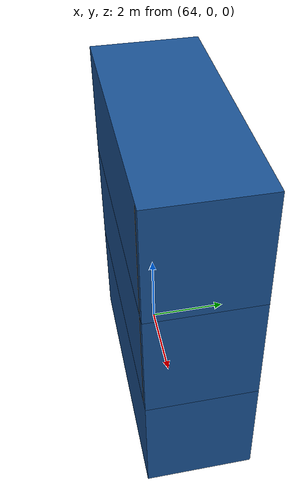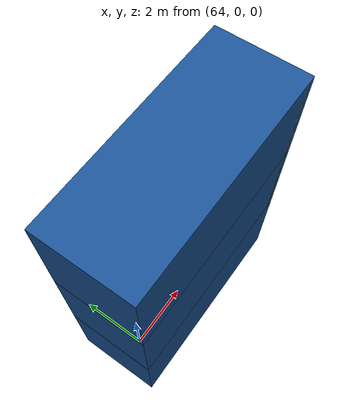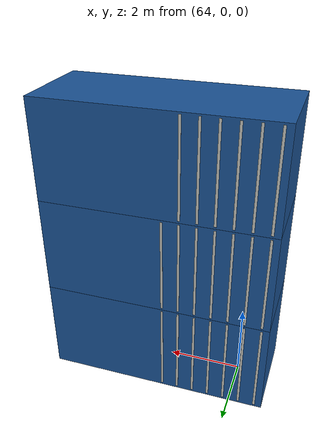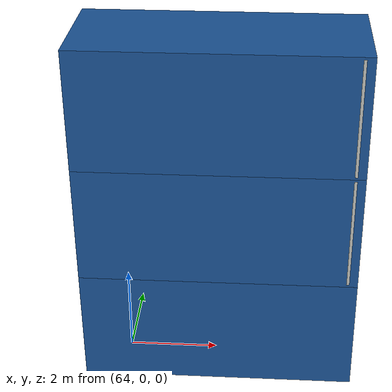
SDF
<sdf version="1.9">
 <world name="iris_mppi_yard_runup60">
  <model name="container_1_0">
   <static>true</static>
   <pose>66.1 0.10000000000000009 1.3 0.0 0.0 0.0</pose>
   <link name="body">
    <collision name="collision"><geometry><box><size>6 2.44 2.6</size></box></geometry></collision>
    <visual name="visual">
     <geometry><box><size>6 2.44 2.6</size></box></geometry>
     <material><ambient>.10 .32 .58 1</ambient><diffuse>.10 .32 .58 1</diffuse></material>
    </visual>
   </link>
  </model>
  <model name="rib_1_0_0_1">
   <static>true</static>
   <pose>63.3 1.318 1.3 0.0 0.0 0.0</pose>
   <link name="body">
    <visual name="visual">
     <geometry><box><size>0.06 0.008 2.5</size></box></geometry>
     <material><ambient>.75 .75 .72 1</ambient><diffuse>.75 .75 .72 1</diffuse></material>
    </visual>
   </link>
  </model>
  <model name="rib_1_0_1_1">
   <static>true</static>
   <pose>63.730000000000004 1.318 1.3 0.0 0.0 0.0</pose>
   <link name="body">
    <visual name="visual">
     <geometry><box><size>0.06 0.008 2.5</size></box></geometry>
     <material><ambient>.75 .75 .72 1</ambient><diffuse>.75 .75 .72 1</diffuse></material>
    </visual>
   </link>
  </model>
  <model name="rib_1_0_2_1">
   <static>true</static>
   <pose>64.16 1.318 1.3 0.0 0.0 0.0</pose>
   <link name="body">
    <visual name="visual">
     <geometry><box><size>0.06 0.008 2.5</size></box></geometry>
     <material><ambient>.75 .75 .72 1</ambient><diffuse>.75 .75 .72 1</diffuse></material>
    </visual>
   </link>
  </model>
  <model name="rib_1_0_3_1">
   <static>true</static>
   <pose>64.59 1.318 1.3 0.0 0.0 0.0</pose>
   <link name="body">
    <visual name="visual">
     <geometry><box><size>0.06 0.008 2.5</size></box></geometry>
     <material><ambient>.75 .75 .72 1</ambient><diffuse>.75 .75 .72 1</diffuse></material>
    </visual>
   </link>
  </model>
  <model name="rib_1_0_4_1">
   <static>true</static>
   <pose>65.02 1.318 1.3 0.0 0.0 0.0</pose>
   <link name="body">
    <visual name="visual">
     <geometry><box><size>0.06 0.008 2.5</size></box></geometry>
     <material><ambient>.75 .75 .72 1</ambient><diffuse>.75 .75 .72 1</diffuse></material>
    </visual>
   </link>
  </model>
  <model name="rib_1_0_5_1">
   <static>true</static>
   <pose>65.45 1.318 1.3 0.0 0.0 0.0</pose>
   <link name="body">
    <visual name="visual">
     <geometry><box><size>0.06 0.008 2.5</size></box></geometry>
     <material><ambient>.75 .75 .72 1</ambient><diffuse>.75 .75 .72 1</diffuse></material>
    </visual>
   </link>
  </model>
  <model name="rib_1_0_6_1">
   <static>true</static>
   <pose>65.88 1.318 1.3 0.0 0.0 0.0</pose>
   <link name="body">
    <visual name="visual">
     <geometry><box><size>0.06 0.008 2.5</size></box></geometry>
     <material><ambient>.75 .75 .72 1</ambient><diffuse>.75 .75 .72 1</diffuse></material>
    </visual>
   </link>
  </model>
  <model name="container_1_1">
   <static>true</static>
   <pose>66.1 0.10000000000000009 3.9000000000000004 0.0 0.0 0.0</pose>
   <link name="body">
    <collision name="collision"><geometry><box><size>6 2.44 2.6</size></box></geometry></collision>
    <visual name="visual">
     <geometry><box><size>6 2.44 2.6</size></box></geometry>
     <material><ambient>.10 .32 .58 1</ambient><diffuse>.10 .32 .58 1</diffuse></material>
    </visual>
   </link>
  </model>
  <model name="rib_1_1_0_1">
   <static>true</static>
   <pose>63.3 1.318 3.9000000000000004 0.0 0.0 0.0</pose>
   <link name="body">
    <visual name="visual">
     <geometry><box><size>0.06 0.008 2.5</size></box></geometry>
     <material><ambient>.75 .75 .72 1</ambient><diffuse>.75 .75 .72 1</diffuse></material>
    </visual>
   </link>
  </model>
  <model name="rib_1_1_1_1">
   <static>true</static>
   <pose>63.730000000000004 1.318 3.9000000000000004 0.0 0.0 0.0</pose>
   <link name="body">
    <visual name="visual">
     <geometry><box><size>0.06 0.008 2.5</size></box></geometry>
     <material><ambient>.75 .75 .72 1</ambient><diffuse>.75 .75 .72 1</diffuse></material>
    </visual>
   </link>
  </model>
  <model name="rib_1_1_2_1">
   <static>true</static>
   <pose>64.16 1.318 3.9000000000000004 0.0 0.0 0.0</pose>
   <link name="body">
    <visual name="visual">
     <geometry><box><size>0.06 0.008 2.5</size></box></geometry>
     <material><ambient>.75 .75 .72 1</ambient><diffuse>.75 .75 .72 1</diffuse></material>
    </visual>
   </link>
  </model>
  <model name="rib_1_1_3_1">
   <static>true</static>
   <pose>64.59 1.318 3.9000000000000004 0.0 0.0 0.0</pose>
   <link name="body">
    <visual name="visual">
     <geometry><box><size>0.06 0.008 2.5</size></box></geometry>
     <material><ambient>.75 .75 .72 1</ambient><diffuse>.75 .75 .72 1</diffuse></material>
    </visual>
   </link>
  </model>
  <model name="rib_1_1_4_1">
   <static>true</static>
   <pose>65.02 1.318 3.9000000000000004 0.0 0.0 0.0</pose>
   <link name="body">
    <visual name="visual">
     <geometry><box><size>0.06 0.008 2.5</size></box></geometry>
     <material><ambient>.75 .75 .72 1</ambient><diffuse>.75 .75 .72 1</diffuse></material>
    </visual>
   </link>
  </model>
  <model name="rib_1_1_5_1">
   <static>true</static>
   <pose>65.45 1.318 3.9000000000000004 0.0 0.0 0.0</pose>
   <link name="body">
    <visual name="visual">
     <geometry><box><size>0.06 0.008 2.5</size></box></geometry>
     <material><ambient>.75 .75 .72 1</ambient><diffuse>.75 .75 .72 1</diffuse></material>
    </visual>
   </link>
  </model>
  <model name="rib_1_1_6_1">
   <static>true</static>
   <pose>65.88 1.318 3.9000000000000004 0.0 0.0 0.0</pose>
   <link name="body">
    <visual name="visual">
     <geometry><box><size>0.06 0.008 2.5</size></box></geometry>
     <material><ambient>.75 .75 .72 1</ambient><diffuse>.75 .75 .72 1</diffuse></material>
    </visual>
   </link>
  </model>
  <model name="rib_1_1_13_-1">
   <static>true</static>
   <pose>68.89 -1.1179999999999999 3.9000000000000004 0.0 0.0 0.0</pose>
   <link name="body">
    <visual name="visual">
     <geometry><box><size>0.06 0.008 2.5</size></box></geometry>
     <material><ambient>.75 .75 .72 1</ambient><diffuse>.75 .75 .72 1</diffuse></material>
    </visual>
   </link>
  </model>
  <model name="container_1_2">
   <static>true</static>
   <pose>66.1 0.10000000000000009 6.5 0.0 0.0 0.0</pose>
   <link name="body">
    <collision name="collision"><geometry><box><size>6 2.44 2.6</size></box></geometry></collision>
    <visual name="visual">
     <geometry><box><size>6 2.44 2.6</size></box></geometry>
     <material><ambient>.10 .32 .58 1</ambient><diffuse>.10 .32 .58 1</diffuse></material>
    </visual>
   </link>
  </model>
  <model name="rib_1_2_0_1">
   <static>true</static>
   <pose>63.3 1.318 6.5 0.0 0.0 0.0</pose>
   <link name="body">
    <visual name="visual">
     <geometry><box><size>0.06 0.008 2.5</size></box></geometry>
     <material><ambient>.75 .75 .72 1</ambient><diffuse>.75 .75 .72 1</diffuse></material>
    </visual>
   </link>
  </model>
  <model name="rib_1_2_1_1">
   <static>true</static>
   <pose>63.730000000000004 1.318 6.5 0.0 0.0 0.0</pose>
   <link name="body">
    <visual name="visual">
     <geometry><box><size>0.06 0.008 2.5</size></box></geometry>
     <material><ambient>.75 .75 .72 1</ambient><diffuse>.75 .75 .72 1</diffuse></material>
    </visual>
   </link>
  </model>
  <model name="rib_1_2_2_1">
   <static>true</static>
   <pose>64.16 1.318 6.5 0.0 0.0 0.0</pose>
   <link name="body">
    <visual name="visual">
     <geometry><box><size>0.06 0.008 2.5</size></box></geometry>
     <material><ambient>.75 .75 .72 1</ambient><diffuse>.75 .75 .72 1</diffuse></material>
    </visual>
   </link>
  </model>
  <model name="rib_1_2_3_1">
   <static>true</static>
   <pose>64.59 1.318 6.5 0.0 0.0 0.0</pose>
   <link name="body">
    <visual name="visual">
     <geometry><box><size>0.06 0.008 2.5</size></box></geometry>
     <material><ambient>.75 .75 .72 1</ambient><diffuse>.75 .75 .72 1</diffuse></material>
    </visual>
   </link>
  </model>
  <model name="rib_1_2_4_1">
   <static>true</static>
   <pose>65.02 1.318 6.5 0.0 0.0 0.0</pose>
   <link name="body">
    <visual name="visual">
     <geometry><box><size>0.06 0.008 2.5</size></box></geometry>
     <material><ambient>.75 .75 .72 1</ambient><diffuse>.75 .75 .72 1</diffuse></material>
    </visual>
   </link>
  </model>
  <model name="rib_1_2_5_1">
   <static>true</static>
   <pose>65.45 1.318 6.5 0.0 0.0 0.0</pose>
   <link name="body">
    <visual name="visual">
     <geometry><box><size>0.06 0.008 2.5</size></box></geometry>
     <material><ambient>.75 .75 .72 1</ambient><diffuse>.75 .75 .72 1</diffuse></material>
    </visual>
   </link>
  </model>
  <model name="rib_1_2_13_-1">
   <static>true</static>
   <pose>68.89 -1.1179999999999999 6.5 0.0 0.0 0.0</pose>
   <link name="body">
    <visual name="visual">
     <geometry><box><size>0.06 0.008 2.5</size></box></geometry>
     <material><ambient>.75 .75 .72 1</ambient><diffuse>.75 .75 .72 1</diffuse></material>
    </visual>
   </link>
  </model>
 </world>
</sdf>
